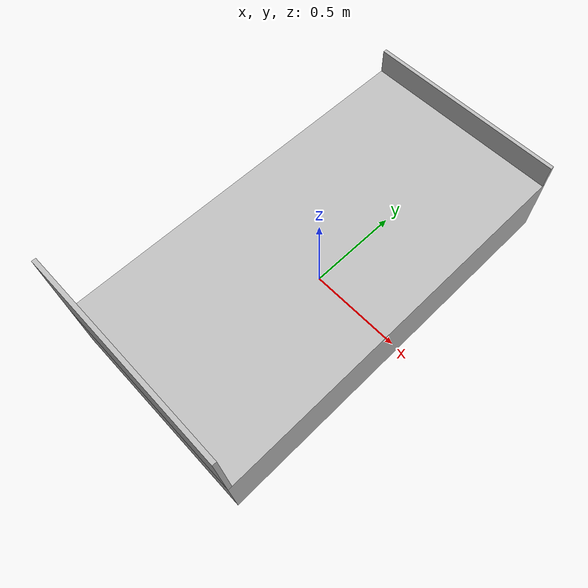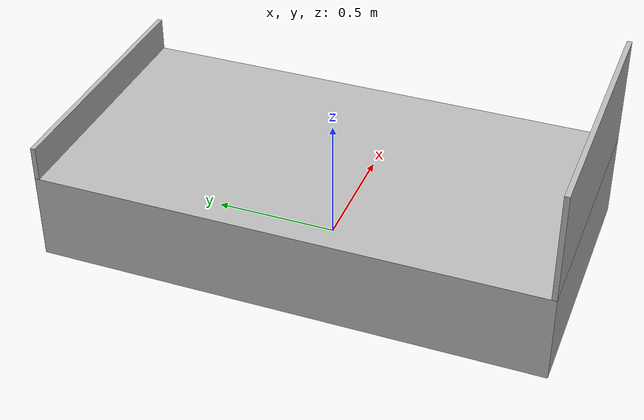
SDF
<?xml version="1.0"?>
<sdf version="1.6">
  <model name="rwc2017/bed">
    <link name="1_link">
      <collision name="1_col">
        <geometry>
          <box>
            <size>1.07 2.04 0.36</size>
          </box>
        </geometry>
      </collision>
      <visual name="1_vis">
        <geometry>
          <box>
            <size>1.07 2.04 0.36</size>
          </box>
        </geometry>
      </visual>
      <pose>0 0 0.18 0 0 0</pose>
    </link>
    <link name="2_link">
      <collision name="2_col">
        <geometry>
          <box>
            <size>1.07 0.02 0.44</size>
          </box>
        </geometry>
      </collision>
      <visual name="2_vis">
        <geometry>
          <box>
            <size>1.07 0.02 0.44</size>
          </box>
        </geometry>
      </visual>
      <pose>0.0 -1.01 0.58 0 0 0</pose>
    </link>
    <link name="3_link">
      <collision name="3_col">
        <geometry>
          <box>
            <size>1.07 0.02 0.14</size>
          </box>
        </geometry>
      </collision>
      <visual name="3_vis">
        <geometry>
          <box>
            <size>1.07 0.02 0.14</size>
          </box>
        </geometry>
      </visual>
      <pose>0.0 1.01 0.43 0 0 0</pose>
    </link>
    <link name="on_top_of">
      <virtual_volume name="on_top_of_vv">
        <geometry>
          <box>
            <size>0.96 1.8 0.6</size>
          </box>
        </geometry>
        <pose>0.0 0.0 0.7 0 0 0</pose>
      </virtual_volume>
    </link>
    <link name="in_front_of">
      <virtual_volume name="in_front_of_vv">
        <geometry>
          <box>
            <size>0.5 1.6 0.01</size>
          </box>
        </geometry>
        <pose>0.85 0.0 0.005 0 0 0</pose>
      </virtual_volume>
    </link>
    <static>true</static>
  </model>
</sdf>
